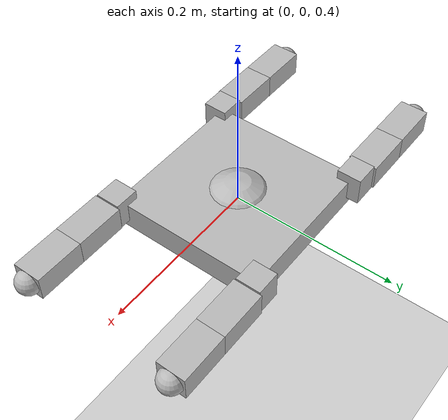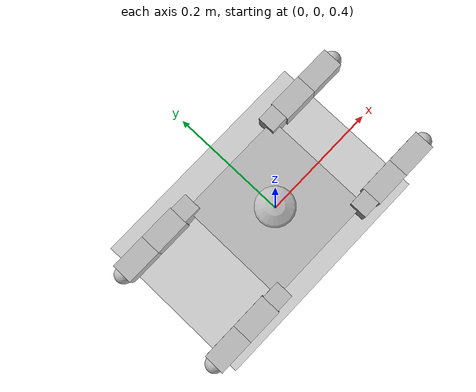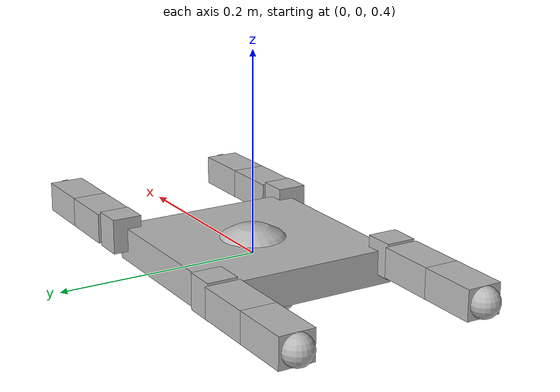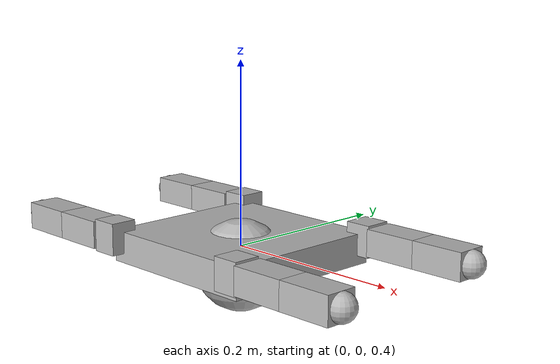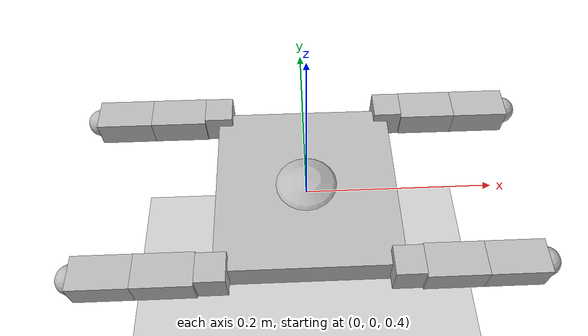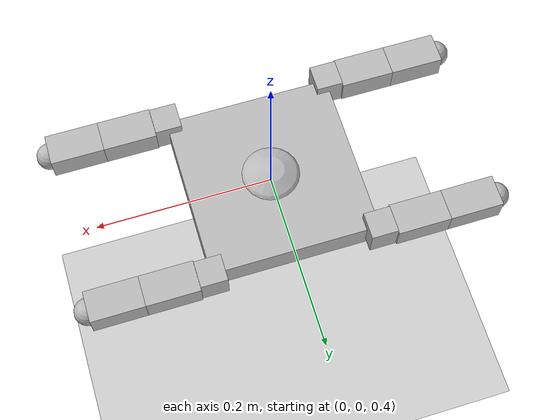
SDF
<?xml version='1.0'?>
<sdf version='1.6'>
  <world name="default">
   <physics name="default_physics" default="0" type="ode">
      <max_step_size>0.001</max_step_size>
      <real_time_factor>1</real_time_factor>
      <real_time_update_rate>1000</real_time_update_rate>
      <ode>
        <solver>
          <type>quick</type>
          <iters>50</iters>
          <sor>1.0</sor>
          <use_dynamic_moi_rescaling>false</use_dynamic_moi_rescaling>
        </solver>
      </ode>
    </physics>
    <include>
      <uri>model://ground_plane</uri>
    </include>
    <include>
      <uri>model://sun</uri>
    </include>
 <model name="tortoise">
  <static>false</static>
<!--body-->
    <link name="chassis">
      <pose>0 0 0.400000 0 0 0</pose>
      <inertial>
        <mass>1.050000</mass>
        <inertia>
          <ixx>0.015162</ixx>
          <ixy>0.00</ixy>
          <ixz>0.00</ixz>
          <iyy>0.015162</iyy>
          <iyz>0.00</iyz>
          <izz>0.015162</izz>
        </inertia>
      </inertial>
      <collision name="collision">
        <geometry><box><size>0.190000 0.190000 0.034000</size></box></geometry>
      </collision>
      <visual name="visual">
        <geometry><box><size>0.190000 0.190000 0.034000</size></box></geometry>
      </visual>
    </link>

    <link name="belly">
      <pose>0.000000 0.000000 0.3795000 0.000000 0.000000 0.000000</pose>
      <inertial>
        <mass>0.100000</mass>
        <inertia>
          <ixx>0.000160</ixx>
          <ixy>0.00</ixy>
          <ixz>0.00</ixz>
          <iyy>0.000160</iyy>
          <iyz>0.00</iyz>
          <izz>0.000160</izz>
        </inertia>
      </inertial>

      <collision name="collision">
        <geometry><sphere><radius>0.05000</radius></sphere></geometry>
        <surface>
          <friction>
            <ode>
              <mu>0.1</mu>
              <mu2>0.1</mu2>
            </ode>
          </friction>
        </surface>
      </collision>
      <visual name="visual">
        <geometry><sphere><radius>0.05000</radius></sphere></geometry>
      </visual>
    </link>

    <joint type="revolute" name="belly_hinge">
      <pose>0.000000 0.000000 0.000000 0 0 0</pose>
      <child>belly</child>
      <parent>chassis</parent>
      <axis>
        <xyz>1.000000 1.000000 1.000000</xyz>
        <dynamics><damping>0.1</damping><friction>0.001</friction></dynamics>
        <limit>
          <effort>1.200000</effort>
          <velocity>3.0</velocity>
        </limit>
      </axis>
    </joint>

<!--link0-->
    <link name="coxa0">
      <pose>0.0950000 0.095000 0.411000 0.000000 0.000000 0.000000</pose>
      <inertial>
        <mass>0.067000</mass>
        <inertia>
          <ixx>0.000965</ixx>
          <ixy>0.00</ixy>
          <ixz>0.00</ixz>
          <iyy>0.000965</iyy>
          <iyz>0.00</iyz>
          <izz>0.000965</izz>
        </inertia>
      </inertial>
      <visual name="visual">
        <geometry><box><size>0.030000 0.030000 0.035000</size></box></geometry>
      </visual>
    </link>

    <joint type="revolute" name="coxa_hinge0">
      <pose>0.000000 0.0000000 0.000000 0 0 0</pose>
      <child>coxa0</child>
      <parent>chassis</parent>
      <axis>
        <xyz>0.000000 0.000000 1.000000</xyz>
        <dynamics><damping>0.1</damping><friction>0.1</friction></dynamics>
        <limit>
          <velocity>3.0</velocity>
        </limit>
      </axis>
      <sensor name="coxa_0_torque" type="force_torque">
        <real_time_update_rate>30</real_time_update_rate>
      </sensor>
    </joint>

    <link name="femur0">
      <pose>0.140000 0.095000 0.411000 0.000000 0.000000 0.000000</pose>
      <inertial>
        <mass>0.067000</mass>
        <inertia>
          <ixx>0.000965</ixx>
          <ixy>0.00</ixy>
          <ixz>0.00</ixz>
          <iyy>0.000965</iyy>
          <iyz>0.00</iyz>
          <izz>0.000965</izz>
        </inertia>
      </inertial>
      <visual name="visual">
        <geometry><box><size>0.060000 0.035000 0.030000</size></box></geometry>

      </visual>
    </link>

    <joint type="revolute" name="femur_hinge0">
      <pose>-0.030000 0.000000 0.000000 0 0 0</pose>
      <child>femur0</child>
      <parent>coxa0</parent>
      <axis>
        <xyz>0.000000 1.000000 0.000000</xyz>
        <dynamics><damping>0.1</damping><friction>0.1</friction></dynamics>
        <limit>
          <velocity>3.0</velocity>
        </limit>
      </axis>
      <sensor name="femur_0_torque" type="force_torque">
        <real_time_update_rate>30</real_time_update_rate>
      </sensor>
    </joint>

    <link name="tibia0">
      <pose>0.200000 0.095000 0.411000 0.000000 0.000000 0.000000</pose>
      <inertial>
        <mass>0.067000</mass>
        <inertia>
          <ixx>0.000965</ixx>
          <ixy>0.00</ixy>
          <ixz>0.00</ixz>
          <iyy>0.000965</iyy>
          <iyz>0.00</iyz>
          <izz>0.000965</izz>
        </inertia>
      </inertial>
      <visual name="visual">
        <geometry><box><size>0.060000 0.035000 0.030000</size></box></geometry>

      </visual>
   </link>

    <joint type="revolute" name="tibia_hinge0">
      <pose>-0.030000 0.000000 0.000000 0 0 0</pose>
      <child>tibia0</child>
      <parent>femur0</parent>
      <axis>
        <xyz>0.000000 1.000000 0.000000</xyz>
        <dynamics><damping>0.1</damping><friction>0.1</friction></dynamics>
        <limit>
          <velocity>3.0</velocity>
        </limit>
      </axis>
      <sensor name="tibia_0_torque" type="force_torque">
        <real_time_update_rate>30</real_time_update_rate>
      </sensor>
    </joint>

    <link name="tip0">
      <pose>0.230000 0.095000 0.411000 0 0 0</pose>
      <inertial>
        <mass>0.020000</mass>
        <inertia>
          <ixx>0.000002</ixx>
          <ixy>0.00</ixy>
          <ixz>0.00</ixz>
          <iyy>0.000002</iyy>
          <iyz>0.00</iyz>
          <izz>0.000002</izz>
        </inertia>
      </inertial>
      <collision name="collision">
        <geometry><sphere><radius>0.01500</radius></sphere></geometry>
        <surface>
          <friction>
            <ode>
              <mu>3</mu>
              <mu2>3</mu2>
            </ode>
          </friction>
        </surface>
      </collision>
      <visual name="visual">
        <geometry><sphere><radius>0.01500</radius></sphere></geometry>
      </visual>
    </link>

    <joint type="revolute" name="tip_hinge0">
      <pose>0.000000 0.000000 0.000000 0 0 0</pose>
      <child>tip0</child>
      <parent>tibia0</parent>
      <axis>
        <xyz>1 0 0</xyz>
        <limit>
          <upper>0</upper>
          <lower>0</lower>
        </limit>
        <dynamics><damping>0.1</damping><friction>0.1</friction></dynamics>
      </axis>
    </joint>

<!--link1-->
    <link name="coxa1">
      <pose>0.0950000 -0.095000 0.411000 0.000000 0.000000 0.000000</pose>
      <inertial>
        <mass>0.067000</mass>
        <inertia>
          <ixx>0.000965</ixx>
          <ixy>0.00</ixy>
          <ixz>0.00</ixz>
          <iyy>0.000965</iyy>
          <iyz>0.00</iyz>
          <izz>0.000965</izz>
        </inertia>
      </inertial>
      <collision name="collision">
        <geometry><box><size>0.030000 0.030000 0.035000</size></box></geometry>
      </collision>
      <visual name="visual">
        <geometry><box><size>0.030000 0.030000 0.035000</size></box></geometry>
      </visual>
    </link>

    <joint type="revolute" name="coxa_hinge1">
      <pose>0.000000 0.0000000 0.000000 0 0 0</pose>
      <child>coxa1</child>
      <parent>chassis</parent>
      <axis>
        <xyz>0.000000 0.000000 1.000000</xyz>
        <dynamics><damping>0.1</damping><friction>0.1</friction></dynamics>
        <limit>
          <velocity>3.0</velocity>
        </limit>
      </axis>
      <sensor name="coxa_1_torque" type="force_torque">
        <real_time_update_rate>30</real_time_update_rate>
      </sensor>
    </joint>

    <link name="femur1">
      <pose>0.140000 -0.095000 0.411000 0.000000 0.000000 0.000000</pose>
      <inertial>
        <mass>0.067000</mass>
        <inertia>
          <ixx>0.000965</ixx>
          <ixy>0.00</ixy>
          <ixz>0.00</ixz>
          <iyy>0.000965</iyy>
          <iyz>0.00</iyz>
          <izz>0.000965</izz>
        </inertia>
      </inertial>
      <collision name="collision">
        <geometry><box><size>0.060000 0.035000 0.030000</size></box></geometry>

      </collision>
      <visual name="visual">
        <geometry><box><size>0.060000 0.035000 0.030000</size></box></geometry>

      </visual>
    </link>

    <joint type="revolute" name="femur_hinge1">
      <pose>-0.030000 0.000000 0.000000 0 0 0</pose>
      <child>femur1</child>
      <parent>coxa1</parent>
      <axis>
        <xyz>0.000000 1.000000 0.000000</xyz>
        <dynamics><damping>0.1</damping><friction>0.1</friction></dynamics>
        <limit>
          <velocity>3.0</velocity>
        </limit>
      </axis>
      <sensor name="femur_1_torque" type="force_torque">
        <real_time_update_rate>30</real_time_update_rate>
      </sensor>
    </joint>

    <link name="tibia1">
      <pose>0.200000 -0.095000 0.411000 0.000000 0.000000 0.000000</pose>
      <inertial>
        <mass>0.067000</mass>
        <inertia>
          <ixx>0.000965</ixx>
          <ixy>0.00</ixy>
          <ixz>0.00</ixz>
          <iyy>0.000965</iyy>
          <iyz>0.00</iyz>
          <izz>0.000965</izz>
        </inertia>
      </inertial>
      <collision name="collision">
        <geometry><box><size>0.0350000 0.035000 0.030000</size></box></geometry>

      </collision>
      <visual name="visual">
        <geometry><box><size>0.060000 0.035000 0.030000</size></box></geometry>

      </visual>
   </link>

    <joint type="revolute" name="tibia_hinge1">
      <pose>-0.030000 0.000000 0.000000 0 0 0</pose>
      <child>tibia1</child>
      <parent>femur1</parent>
      <axis>
        <xyz>0.000000 1.000000 0.000000</xyz>
        <dynamics><damping>0.1</damping><friction>0.1</friction></dynamics>
        <limit>
          <velocity>3.0</velocity>
        </limit>
      </axis>
      <sensor name="tibia_1_torque" type="force_torque">
        <real_time_update_rate>30</real_time_update_rate>
      </sensor>
    </joint>

    <link name="tip1">
      <pose>0.230000 -0.095000 0.411000 0 0 0</pose>
      <inertial>
        <mass>0.020000</mass>
        <inertia>
          <ixx>0.000002</ixx>
          <ixy>0.00</ixy>
          <ixz>0.00</ixz>
          <iyy>0.000002</iyy>
          <iyz>0.00</iyz>
          <izz>0.000002</izz>
        </inertia>
      </inertial>
      <collision name="collision">
        <geometry><sphere><radius>0.01500</radius></sphere></geometry>
        <surface>
          <friction>
            <ode>
              <mu>3</mu>
              <mu2>3</mu2>
            </ode>
          </friction>
        </surface>
      </collision>
      <visual name="visual">
        <geometry><sphere><radius>0.01500</radius></sphere></geometry>
      </visual>
    </link>

    <joint type="revolute" name="tip_hinge1">+-
      <pose>0.000000 0.000000 0.000000 0 0 0</pose>
      <child>tip1</child>
      <parent>tibia1</parent>
      <axis>
        <xyz>1 0 0</xyz>
        <limit>
          <upper>0</upper>
          <lower>0</lower>
        </limit>
        <dynamics><damping>0.1</damping><friction>0.1</friction></dynamics>
      </axis>
    </joint>

<!--link 2-->
    <link name="coxa2">
      <pose>-0.0950000 -0.095000 0.411000 0.000000 0.000000 0.000000</pose>
      <inertial>
        <mass>0.067000</mass>
        <inertia>
          <ixx>0.000965</ixx>
          <ixy>0.00</ixy>
          <ixz>0.00</ixz>
          <iyy>0.000965</iyy>
          <iyz>0.00</iyz>
          <izz>0.000965</izz>
        </inertia>
      </inertial>
      <collision name="collision">
        <geometry><box><size>0.030000 0.030000 0.035000</size></box></geometry>
      </collision>
      <visual name="visual">
        <geometry><box><size>0.030000 0.030000 0.035000</size></box></geometry>
      </visual>
    </link>

    <joint type="revolute" name="coxa_hinge2">
      <pose>0.000000 0.0000000 0.000000 0 0 0</pose>
      <child>coxa2</child>
      <parent>chassis</parent>
      <axis>
        <xyz>0.000000 0.000000 1.000000</xyz>
        <dynamics><damping>0.1</damping><friction>0.1</friction></dynamics>
        <limit>
          <velocity>3.0</velocity>
        </limit>
      </axis>
      <sensor name="coxa_2_torque" type="force_torque">
        <real_time_update_rate>30</real_time_update_rate>
      </sensor>
    </joint>

    <link name="femur2">
      <pose>-0.140000 -0.095000 0.411000 0.000000 0.000000 0.000000</pose>
      <inertial>
        <mass>0.067000</mass>
        <inertia>
          <ixx>0.000965</ixx>
          <ixy>0.00</ixy>
          <ixz>0.00</ixz>
          <iyy>0.000965</iyy>
          <iyz>0.00</iyz>
          <izz>0.000965</izz>
        </inertia>
      </inertial>
      <collision name="collision">
        <geometry><box><size>0.060000 0.035000 0.030000</size></box></geometry>

      </collision>
      <visual name="visual">
        <geometry><box><size>0.060000 0.035000 0.030000</size></box></geometry>

      </visual>
    </link>

    <joint type="revolute" name="femur_hinge2">
      <pose>0.030000 0.000000 0.000000 0 0 0</pose>
      <child>femur2</child>
      <parent>coxa2</parent>
      <axis>
        <xyz>0.000000 -1.000000 0.000000</xyz>
        <dynamics><damping>0.1</damping><friction>0.1</friction></dynamics>
        <limit>
          <velocity>3.0</velocity>
        </limit>
      </axis>
      <sensor name="femur_2_torque" type="force_torque">
        <real_time_update_rate>30</real_time_update_rate>
      </sensor>
    </joint>

    <link name="tibia2">
      <pose>-0.200000 -0.095000 0.411000 0.000000 0.000000 0.000000</pose>
      <inertial>
        <mass>0.067000</mass>
        <inertia>
          <ixx>0.000965</ixx>
          <ixy>0.00</ixy>
          <ixz>0.00</ixz>
          <iyy>0.000965</iyy>
          <iyz>0.00</iyz>
          <izz>0.000965</izz>
        </inertia>
      </inertial>
      <collision name="collision">
        <geometry><box><size>0.0350000 0.035000 0.030000</size></box></geometry>

      </collision>
      <visual name="visual">
        <geometry><box><size>0.060000 0.035000 0.030000</size></box></geometry>

      </visual>
   </link>

    <joint type="revolute" name="tibia_hinge2">
      <pose>0.030000 0.000000 0.000000 0 0 0</pose>
      <child>tibia2</child>
      <parent>femur2</parent>
      <axis>
        <xyz>0.000000 -1.000000 0.000000</xyz>
        <dynamics><damping>0.1</damping><friction>0.1</friction></dynamics>
        <limit>
          <velocity>3.0</velocity>
        </limit>
      </axis>
      <sensor name="tibia_2_torque" type="force_torque">
        <real_time_update_rate>30</real_time_update_rate>
      </sensor>
    </joint>

    <link name="tip2">
      <pose>-0.230000 -0.095000 0.411000 0 0 0</pose>
      <inertial>
        <mass>0.020000</mass>
        <inertia>
          <ixx>0.000002</ixx>
          <ixy>0.00</ixy>
          <ixz>0.00</ixz>
          <iyy>0.000002</iyy>
          <iyz>0.00</iyz>
          <izz>0.000002</izz>
        </inertia>
      </inertial>
      <collision name="collision">
        <geometry><sphere><radius>0.01500</radius></sphere></geometry>
        <surface>
          <friction>
            <ode>
              <mu>3</mu>
              <mu2>3</mu2>
            </ode>
          </friction>
        </surface>
      </collision>
      <visual name="visual">
        <geometry><sphere><radius>0.01500</radius></sphere></geometry>
      </visual>
    </link>

    <joint type="revolute" name="tip_hinge2">
      <pose>0.000000 0.000000 0.000000 0 0 0</pose>
      <child>tip2</child>
      <parent>tibia2</parent>
      <axis>
        <xyz>1 0 0</xyz>
        <limit>
          <upper>0</upper>
          <lower>0</lower>
        </limit>
        <dynamics><damping>0.1</damping><friction>0.1</friction></dynamics>
      </axis>
    </joint>

<!--link 3-->
    <link name="coxa3">
      <pose>-0.0950000 0.095000 0.411000 0.000000 0.000000 0.000000</pose>
      <inertial>
        <mass>0.067000</mass>
        <inertia>
          <ixx>0.000965</ixx>
          <ixy>0.00</ixy>
          <ixz>0.00</ixz>
          <iyy>0.000965</iyy>
          <iyz>0.00</iyz>
          <izz>0.000965</izz>
        </inertia>
      </inertial>
      <collision name="collision">
        <geometry><box><size>0.030000 0.030000 0.035000</size></box></geometry>
      </collision>
      <visual name="visual">
        <geometry><box><size>0.030000 0.030000 0.035000</size></box></geometry>
      </visual>
    </link>

    <joint type="revolute" name="coxa_hinge3">
      <pose>0.000000 0.0000000 0.000000 0 0 0</pose>
      <child>coxa3</child>
      <parent>chassis</parent>
      <axis>
        <xyz>0.000000 0.000000 1.000000</xyz>
        <dynamics><damping>0.1</damping><friction>0.1</friction></dynamics>
        <limit>
          <velocity>3.0</velocity>
        </limit>
      </axis>
      <sensor name="coxa_3_torque" type="force_torque">
        <real_time_update_rate>30</real_time_update_rate>
      </sensor>
    </joint>

    <link name="femur3">
      <pose>-0.140000 0.095000 0.411000 0.000000 0.000000 0.000000</pose>
      <inertial>
        <mass>0.067000</mass>
        <inertia>
          <ixx>0.000965</ixx>
          <ixy>0.00</ixy>
          <ixz>0.00</ixz>
          <iyy>0.000965</iyy>
          <iyz>0.00</iyz>
          <izz>0.000965</izz>
        </inertia>
      </inertial>
      <collision name="collision">
        <geometry><box><size>0.060000 0.035000 0.030000</size></box></geometry>

      </collision>
      <visual name="visual">
        <geometry><box><size>0.060000 0.035000 0.030000</size></box></geometry>

      </visual>
    </link>

    <joint type="revolute" name="femur_hinge3">
      <pose>0.030000 0.000000 0.000000 0 0 0</pose>
      <child>femur3</child>
      <parent>coxa3</parent>
      <axis>
        <xyz>0.000000 -1.000000 0.000000</xyz>
        <dynamics><damping>0.1</damping><friction>0.1</friction></dynamics>
        <limit>
          <velocity>3.0</velocity>
        </limit>
      </axis>
      <sensor name="femur_3_torque" type="force_torque">
        <real_time_update_rate>30</real_time_update_rate>
      </sensor>
    </joint>

    <link name="tibia3">
      <pose>-0.200000 0.095000 0.411000 0.000000 0.000000 0.000000</pose>
      <inertial>
        <mass>0.067000</mass>
        <inertia>
          <ixx>0.000965</ixx>
          <ixy>0.00</ixy>
          <ixz>0.00</ixz>
          <iyy>0.000965</iyy>
          <iyz>0.00</iyz>
          <izz>0.000965</izz>
        </inertia>
      </inertial>
      <collision name="collision">
        <geometry><box><size>0.0350000 0.035000 0.030000</size></box></geometry>

      </collision>
      <visual name="visual">
        <geometry><box><size>0.060000 0.035000 0.030000</size></box></geometry>

      </visual>
   </link>

    <joint type="revolute" name="tibia_hinge3">
      <pose>0.030000 0.000000 0.000000 0 0 0</pose>
      <child>tibia3</child>
      <parent>femur3</parent>
      <axis>
        <xyz>0.000000 -1.000000 0.000000</xyz>
        <dynamics><damping>0.1</damping><friction>0.1</friction></dynamics>
        <limit>
          <velocity>3.0</velocity>
        </limit>
      </axis>
      <sensor name="tibia_3_torque" type="force_torque">
        <real_time_update_rate>30</real_time_update_rate>
      </sensor>
    </joint>

    <link name="tip3">
      <pose>-0.230000 0.095000 0.411000 0 0 0</pose>
      <inertial>
        <mass>0.020000</mass>
        <inertia>
          <ixx>0.000002</ixx>
          <ixy>0.00</ixy>
          <ixz>0.00</ixz>
          <iyy>0.000002</iyy>
          <iyz>0.00</iyz>
          <izz>0.000002</izz>
        </inertia>
      </inertial>
      <collision name="collision">
        <geometry><sphere><radius>0.01500</radius></sphere></geometry>
        <surface>
          <friction>
            <ode>
              <mu>3</mu>
              <mu2>3</mu2>
            </ode>
          </friction>
        </surface>
      </collision>
      <visual name="visual">
        <geometry><sphere><radius>0.01500</radius></sphere></geometry>
      </visual>
    </link>

    <joint type="revolute" name="tip_hinge3">
      <pose>0.000000 0.000000 0.000000 0 0 0</pose>
      <child>tip3</child>
      <parent>tibia3</parent>
      <axis>
        <xyz>1 0 0</xyz>
        <limit>
          <upper>0</upper>
          <lower>0</lower>
        </limit>
        <dynamics><damping>0.1</damping><friction>0.1</friction></dynamics>
      </axis>
    </joint>

  </model>
 </world>
</sdf>
